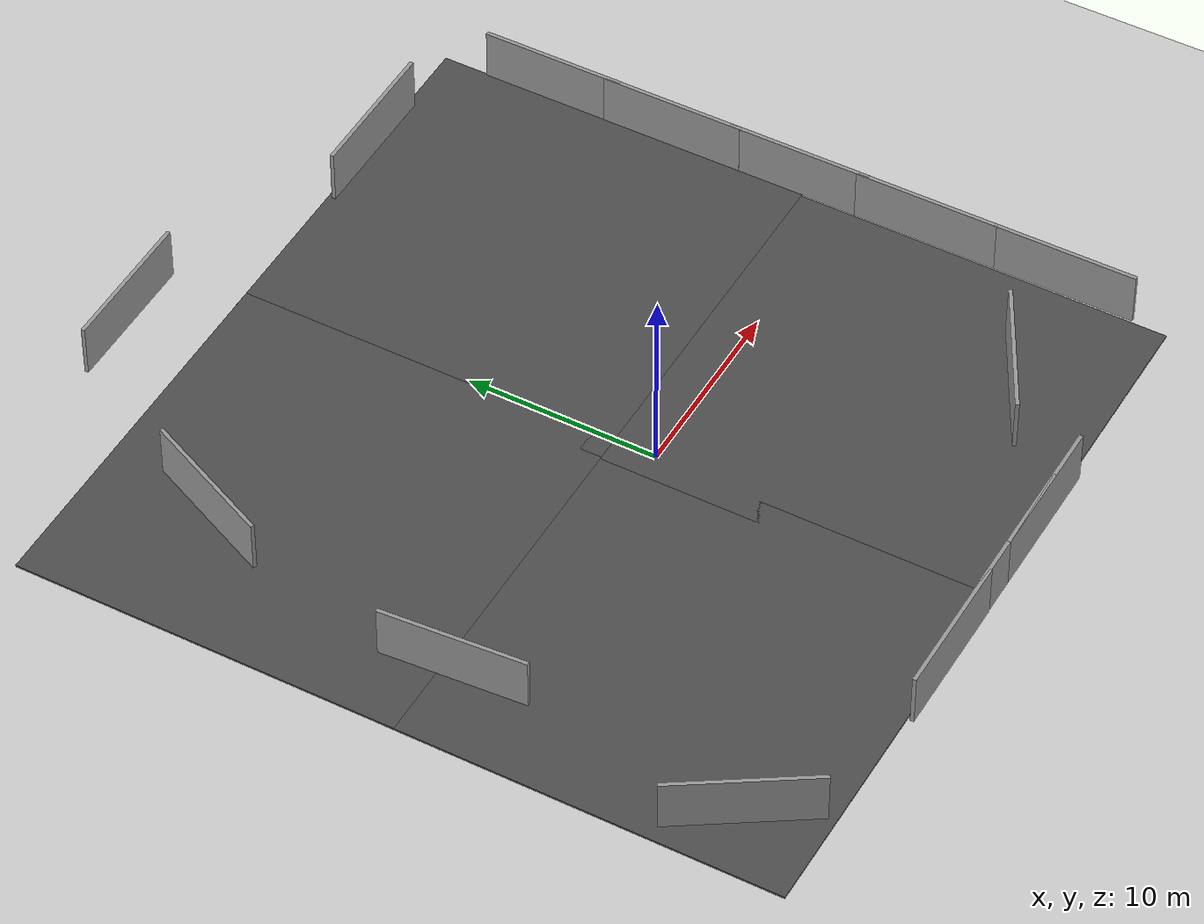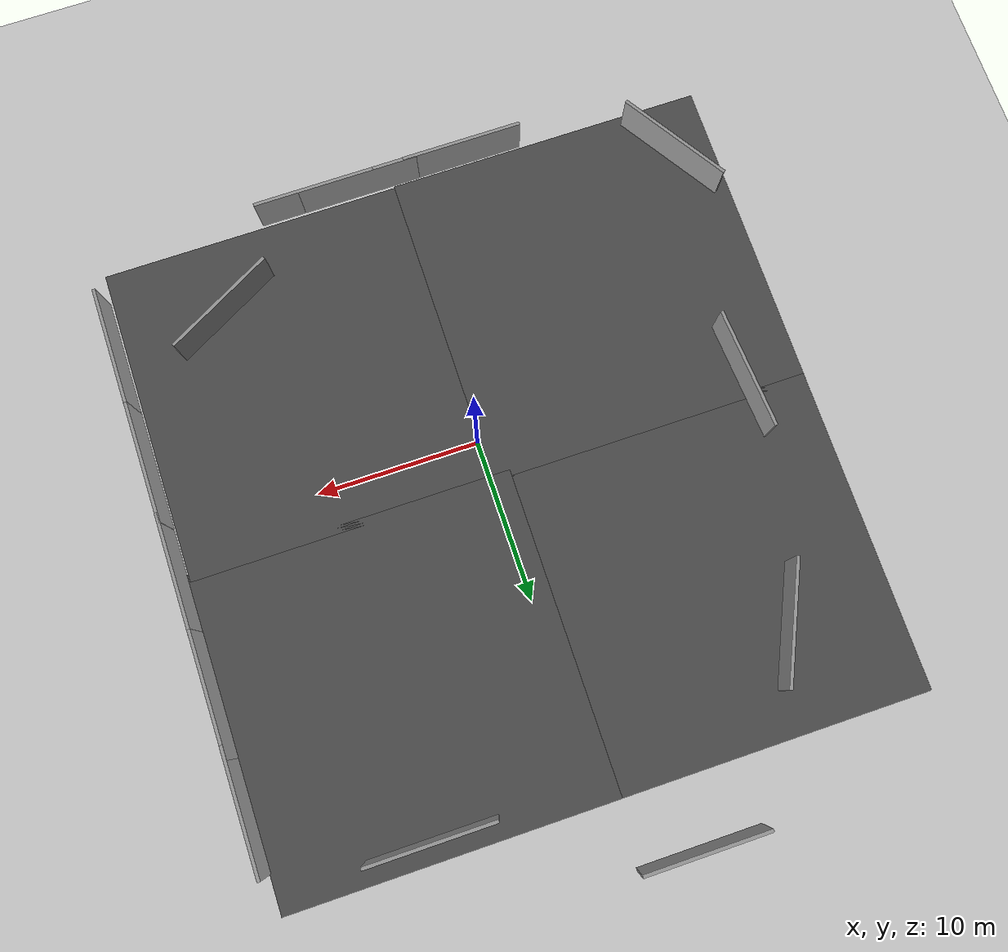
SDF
<sdf version="1.7">
 <world name="default">
  <light name="sun" type="directional">
   <pose>0 0 10 0 -0 0</pose>
   <diffuse>0.8 0.8 0.8 1</diffuse>
   <specular>0.2 0.2 0.2 1</specular>
   <attenuation>
    <range>1000</range>
    <constant>0.9</constant>
    <linear>0.01</linear>
    <quadratic>0.001</quadratic>
   </attenuation>
   <direction>-0.5 0.1 -0.9</direction>
   <spot><inner_angle>0</inner_angle><outer_angle>0</outer_angle><falloff>0</falloff></spot>
  </light>
  <model name="ground_plane">
   <static>1</static>
   <link name="link">
    <collision name="collision">
     <geometry><plane><normal>0 0 1</normal><size>100 100</size></plane></geometry>
     <surface><friction><ode><mu>100</mu><mu2>50</mu2></ode></friction></surface>
    </collision>
    <visual name="visual">
     <cast_shadows>0</cast_shadows>
     <geometry><plane><normal>0 0 1</normal><size>100 100</size></plane></geometry>
     <material>
      <script><uri>file://media/materials/scripts/gazebo.material</uri><name>Gazebo/Grey</name></script>
     </material>
    </visual>
   </link>
  </model>
  <gravity>0 0 -9.8</gravity>
  <magnetic_field>6e-06 2.3e-05 -4.2e-05</magnetic_field>
  <atmosphere type="adiabatic"/>
  <physics name="default_physics" default="0" type="ode">
   <max_step_size>0.001</max_step_size>
   <real_time_factor>1</real_time_factor>
   <real_time_update_rate>1000</real_time_update_rate>
  </physics>
  <scene><ambient>0.4 0.4 0.4 1</ambient><background>0.7 0.7 0.7 1</background><shadows>1</shadows></scene>
  <audio><device>default</device></audio>
  <spherical_coordinates>
   <surface_model>EARTH_WGS84</surface_model>
   <latitude_deg>0</latitude_deg>
   <longitude_deg>0</longitude_deg>
   <elevation>0</elevation>
   <heading_deg>0</heading_deg>
  </spherical_coordinates>
  <model name="asphalt_plane">
   <static>1</static>
   <link name="link">
    <collision name="collision">
     <geometry><box><size>20 20 0.1</size></box></geometry>
     <surface><friction><ode><mu>100</mu><mu2>50</mu2></ode></friction></surface>
    </collision>
    <visual name="visual">
     <cast_shadows>0</cast_shadows>
     <geometry><box><size>20 20 0.1</size></box></geometry>
     <material>
      <script>
       <uri>model://asphalt_plane/materials/scripts</uri>
       <uri>model://asphalt_plane/materials/textures</uri>
       <name>vrc/asphalt</name>
      </script>
     </material>
    </visual>
   </link>
   <pose>-10.1692 -7.43707 0 0 -0 0</pose>
  </model>
  <model name="asphalt_plane_clone">
   <static>1</static>
   <link name="link">
    <collision name="collision">
     <geometry><box><size>20 20 0.1</size></box></geometry>
     <surface><friction><ode><mu>100</mu><mu2>50</mu2></ode></friction></surface>
    </collision>
    <visual name="visual">
     <cast_shadows>0</cast_shadows>
     <geometry><box><size>20 20 0.1</size></box></geometry>
     <material>
      <script>
       <uri>model://asphalt_plane/materials/scripts</uri>
       <uri>model://asphalt_plane/materials/textures</uri>
       <name>vrc/asphalt</name>
      </script>
     </material>
    </visual>
   </link>
   <pose>-10.1603 12.171 0 0 -0 0</pose>
  </model>
  <model name="asphalt_plane_clone_clone">
   <static>1</static>
   <link name="link">
    <collision name="collision">
     <geometry><box><size>20 20 0.1</size></box></geometry>
     <surface><friction><ode><mu>100</mu><mu2>50</mu2></ode></friction></surface>
    </collision>
    <visual name="visual">
     <cast_shadows>0</cast_shadows>
     <geometry><box><size>20 20 0.1</size></box></geometry>
     <material>
      <script>
       <uri>model://asphalt_plane/materials/scripts</uri>
       <uri>model://asphalt_plane/materials/textures</uri>
       <name>vrc/asphalt</name>
      </script>
     </material>
    </visual>
   </link>
   <pose>8.71597 12.1785 0 0 -0 0</pose>
  </model>
  <model name="asphalt_plane_clone_clone_0">
   <static>1</static>
   <link name="link">
    <collision name="collision">
     <geometry><box><size>20 20 0.1</size></box></geometry>
     <surface><friction><ode><mu>100</mu><mu2>50</mu2></ode></friction></surface>
    </collision>
    <visual name="visual">
     <cast_shadows>0</cast_shadows>
     <geometry><box><size>20 20 0.1</size></box></geometry>
     <material>
      <script>
       <uri>model://asphalt_plane/materials/scripts</uri>
       <uri>model://asphalt_plane/materials/textures</uri>
       <name>vrc/asphalt</name>
      </script>
     </material>
    </visual>
   </link>
   <pose>8.60996 -7.34898 0 0 -0 0</pose>
  </model>
  <model name="grey_wall">
   <static>1</static>
   <link name="link">
    <pose>0 0 1.4 0 -0 0</pose>
    <collision name="collision"><geometry><box><size>7.5 0.2 2.8</size></box></geometry></collision>
    <visual name="visual">
     <cast_shadows>0</cast_shadows>
     <geometry><box><size>7.5 0.2 2.8</size></box></geometry>
     <material>
      <script>
       <uri>model://grey_wall/materials/scripts</uri>
       <uri>model://grey_wall/materials/textures</uri>
       <name>vrc/grey_wall</name>
      </script>
     </material>
    </visual>
   </link>
   <pose>-4.8114 -17.6626 0 0 -0 0</pose>
  </model>
  <model name="grey_wall_clone">
   <static>1</static>
   <link name="link">
    <pose>0 0 1.4 0 -0 0</pose>
    <collision name="collision"><geometry><box><size>7.5 0.2 2.8</size></box></geometry></collision>
    <visual name="visual">
     <cast_shadows>0</cast_shadows>
     <geometry><box><size>7.5 0.2 2.8</size></box></geometry>
     <material>
      <script>
       <uri>model://grey_wall/materials/scripts</uri>
       <uri>model://grey_wall/materials/textures</uri>
       <name>vrc/grey_wall</name>
      </script>
     </material>
    </visual>
   </link>
   <pose>1.84642 -17.6367 0 0 -0 0</pose>
  </model>
  <model name="grey_wall_clone_0">
   <static>1</static>
   <link name="link">
    <pose>0 0 1.4 0 -0 0</pose>
    <collision name="collision"><geometry><box><size>7.5 0.2 2.8</size></box></geometry></collision>
    <visual name="visual">
     <cast_shadows>0</cast_shadows>
     <geometry><box><size>7.5 0.2 2.8</size></box></geometry>
     <material>
      <script>
       <uri>model://grey_wall/materials/scripts</uri>
       <uri>model://grey_wall/materials/textures</uri>
       <name>vrc/grey_wall</name>
      </script>
     </material>
    </visual>
   </link>
   <pose>4.62088 -17.6372 0 0 -0 0</pose>
  </model>
  <model name="grey_wall_clone_clone">
   <static>1</static>
   <link name="link">
    <pose>0 0 1.4 0 -0 0</pose>
    <collision name="collision"><geometry><box><size>7.5 0.2 2.8</size></box></geometry></collision>
    <visual name="visual">
     <cast_shadows>0</cast_shadows>
     <geometry><box><size>7.5 0.2 2.8</size></box></geometry>
     <material>
      <script>
       <uri>model://grey_wall/materials/scripts</uri>
       <uri>model://grey_wall/materials/textures</uri>
       <name>vrc/grey_wall</name>
      </script>
     </material>
    </visual>
   </link>
   <pose>-4.48764 26.0166 0 0 -0 0</pose>
  </model>
  <model name="grey_wall_clone_clone_clone">
   <static>1</static>
   <link name="link">
    <pose>0 0 1.4 0 -0 0</pose>
    <collision name="collision"><geometry><box><size>7.5 0.2 2.8</size></box></geometry></collision>
    <visual name="visual">
     <cast_shadows>0</cast_shadows>
     <geometry><box><size>7.5 0.2 2.8</size></box></geometry>
     <material>
      <script>
       <uri>model://grey_wall/materials/scripts</uri>
       <uri>model://grey_wall/materials/textures</uri>
       <name>vrc/grey_wall</name>
      </script>
     </material>
    </visual>
   </link>
   <pose>18.7544 16.0387 0 0 0 -1.56734</pose>
  </model>
  <model name="grey_wall_clone_clone_clone_clone">
   <static>1</static>
   <link name="link">
    <pose>0 0 1.4 0 -0 0</pose>
    <collision name="collision"><geometry><box><size>7.5 0.2 2.8</size></box></geometry></collision>
    <visual name="visual">
     <cast_shadows>0</cast_shadows>
     <geometry><box><size>7.5 0.2 2.8</size></box></geometry>
     <material>
      <script>
       <uri>model://grey_wall/materials/scripts</uri>
       <uri>model://grey_wall/materials/textures</uri>
       <name>vrc/grey_wall</name>
      </script>
     </material>
    </visual>
   </link>
   <pose>18.767 9.41754 0 0 0 -1.56734</pose>
  </model>
  <model name="grey_wall_clone_clone_clone_clone_0">
   <static>1</static>
   <link name="link">
    <pose>0 0 1.4 0 -0 0</pose>
    <collision name="collision"><geometry><box><size>7.5 0.2 2.8</size></box></geometry></collision>
    <visual name="visual">
     <cast_shadows>0</cast_shadows>
     <geometry><box><size>7.5 0.2 2.8</size></box></geometry>
     <material>
      <script>
       <uri>model://grey_wall/materials/scripts</uri>
       <uri>model://grey_wall/materials/textures</uri>
       <name>vrc/grey_wall</name>
      </script>
     </material>
    </visual>
   </link>
   <pose>18.7963 2.45369 0 0 0 -1.56734</pose>
  </model>
  <model name="grey_wall_clone_clone_clone_clone_1">
   <static>1</static>
   <link name="link">
    <pose>0 0 1.4 0 -0 0</pose>
    <collision name="collision"><geometry><box><size>7.5 0.2 2.8</size></box></geometry></collision>
    <visual name="visual">
     <cast_shadows>0</cast_shadows>
     <geometry><box><size>7.5 0.2 2.8</size></box></geometry>
     <material>
      <script>
       <uri>model://grey_wall/materials/scripts</uri>
       <uri>model://grey_wall/materials/textures</uri>
       <name>vrc/grey_wall</name>
      </script>
     </material>
    </visual>
   </link>
   <pose>18.8058 -4.41342 0 0 0 -1.56734</pose>
  </model>
  <model name="grey_wall_clone_clone_clone_clone_2">
   <static>1</static>
   <link name="link">
    <pose>0 0 1.4 0 -0 0</pose>
    <collision name="collision"><geometry><box><size>7.5 0.2 2.8</size></box></geometry></collision>
    <visual name="visual">
     <cast_shadows>0</cast_shadows>
     <geometry><box><size>7.5 0.2 2.8</size></box></geometry>
     <material>
      <script>
       <uri>model://grey_wall/materials/scripts</uri>
       <uri>model://grey_wall/materials/textures</uri>
       <name>vrc/grey_wall</name>
      </script>
     </material>
    </visual>
   </link>
   <pose>18.8343 -11.7301 0 0 0 -1.56734</pose>
  </model>
  <model name="grey_wall_clone_1">
   <static>1</static>
   <link name="link">
    <pose>0 0 1.4 0 -0 0</pose>
    <collision name="collision"><geometry><box><size>7.5 0.2 2.8</size></box></geometry></collision>
    <visual name="visual">
     <cast_shadows>0</cast_shadows>
     <geometry><box><size>7.5 0.2 2.8</size></box></geometry>
     <material>
      <script>
       <uri>model://grey_wall/materials/scripts</uri>
       <uri>model://grey_wall/materials/textures</uri>
       <name>vrc/grey_wall</name>
      </script>
     </material>
    </visual>
   </link>
   <pose>-16.2826 1.38231 0 0 0 -1.5</pose>
  </model>
  <model name="grey_wall_clone_1_clone">
   <static>1</static>
   <link name="link">
    <pose>0 0 1.4 0 -0 0</pose>
    <collision name="collision"><geometry><box><size>7.5 0.2 2.8</size></box></geometry></collision>
    <visual name="visual">
     <cast_shadows>0</cast_shadows>
     <geometry><box><size>7.5 0.2 2.8</size></box></geometry>
     <material>
      <script>
       <uri>model://grey_wall/materials/scripts</uri>
       <uri>model://grey_wall/materials/textures</uri>
       <name>vrc/grey_wall</name>
      </script>
     </material>
    </visual>
   </link>
   <pose>-13.3929 16 0 0 0 -2</pose>
  </model>
  <model name="grey_wall_clone_1_clone_clone">
   <static>1</static>
   <link name="link">
    <pose>0 0 1.4 0 -0 0</pose>
    <collision name="collision"><geometry><box><size>7.5 0.2 2.8</size></box></geometry></collision>
    <visual name="visual">
     <cast_shadows>0</cast_shadows>
     <geometry><box><size>7.5 0.2 2.8</size></box></geometry>
     <material>
      <script>
       <uri>model://grey_wall/materials/scripts</uri>
       <uri>model://grey_wall/materials/textures</uri>
       <name>vrc/grey_wall</name>
      </script>
     </material>
    </visual>
   </link>
   <pose>-17.2959 -13.825 0 0 0 -1</pose>
  </model>
  <model name="grey_wall_clone_1_clone_clone_clone">
   <static>1</static>
   <link name="link">
    <pose>0 0 1.4 0 -0 0</pose>
    <collision name="collision"><geometry><box><size>7.5 0.2 2.8</size></box></geometry></collision>
    <visual name="visual">
     <cast_shadows>0</cast_shadows>
     <geometry><box><size>7.5 0.2 2.8</size></box></geometry>
     <material>
      <script>
       <uri>model://grey_wall/materials/scripts</uri>
       <uri>model://grey_wall/materials/textures</uri>
       <name>vrc/grey_wall</name>
      </script>
     </material>
    </visual>
   </link>
   <pose>11.9863 -12.4051 0 0 -0 0.5</pose>
  </model>
  <model name="grey_wall_clone_1_clone_clone_clone_0">
   <static>1</static>
   <link name="link">
    <pose>0 0 1.4 0 -0 0</pose>
    <collision name="collision"><geometry><box><size>7.5 0.2 2.8</size></box></geometry></collision>
    <visual name="visual">
     <cast_shadows>0</cast_shadows>
     <geometry><box><size>7.5 0.2 2.8</size></box></geometry>
     <material>
      <script>
       <uri>model://grey_wall/materials/scripts</uri>
       <uri>model://grey_wall/materials/textures</uri>
       <name>vrc/grey_wall</name>
      </script>
     </material>
    </visual>
   </link>
   <pose>9.29602 20.6704 2.22573 0 -0 0</pose>
  </model>
 </world>
</sdf>
